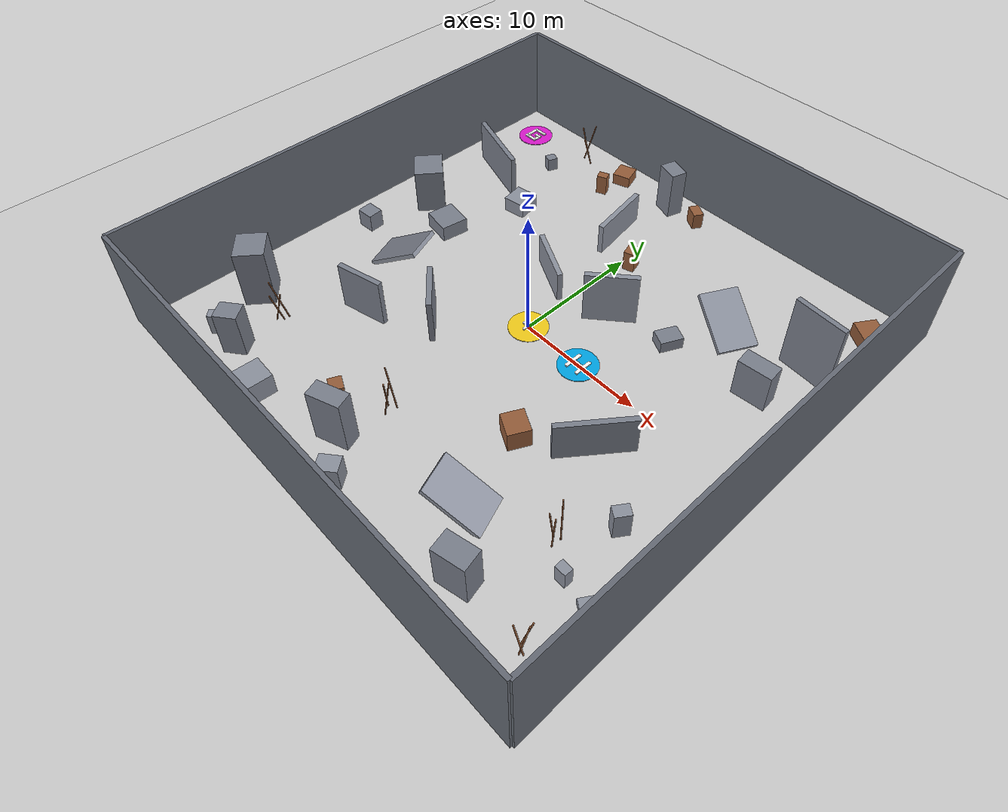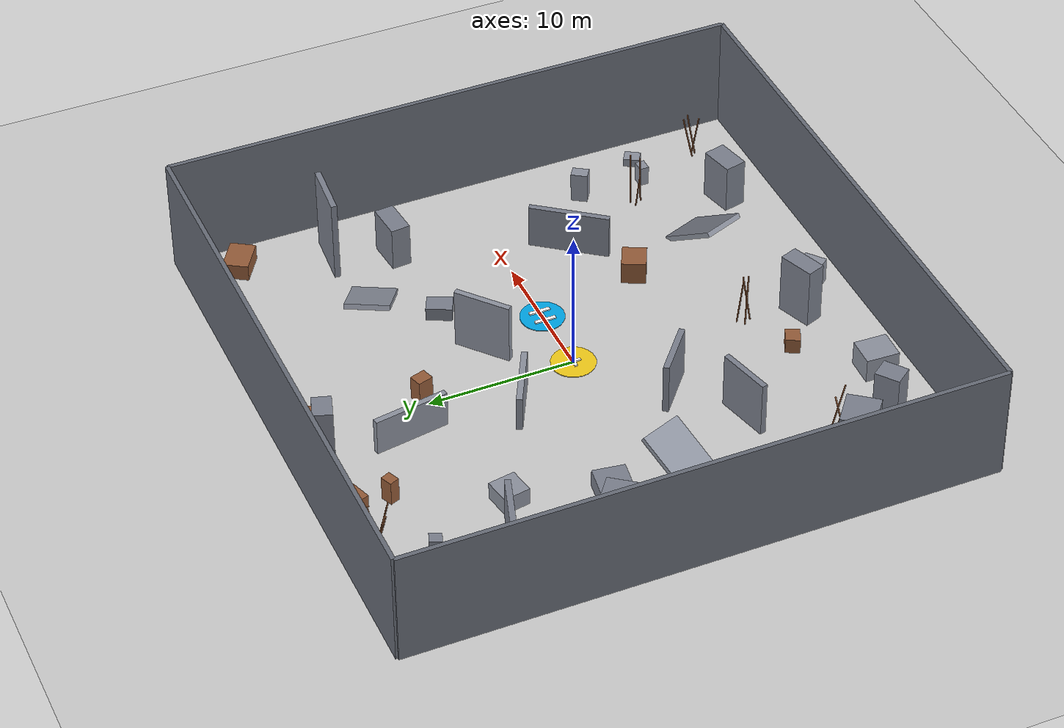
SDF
<?xml version="1.0" ?>
<sdf version="1.6">
  <world name="rubble_course">
    <include><uri>model://sun</uri></include>
    <include><uri>model://ground_plane</uri></include>

    <scene>
      <ambient>0.42 0.40 0.38 1</ambient>
      <background>0.62 0.58 0.52 1</background>
      <shadows>1</shadows>
    </scene>

    <!-- Outer walls -->
    <model name="perim_s">
      <static>true</static>
      <pose>0.000 -20.000 4.000 0.0000 0.0000 0.0000</pose>
      <link name="body">
        <collision name="c"><geometry><box><size>40.000 0.300 8.000</size></box></geometry></collision>
        <visual name="v"><geometry><box><size>40.000 0.300 8.000</size></box></geometry>
          <material><ambient>0.30 0.32 0.36 1</ambient><diffuse>0.40 0.42 0.46 1</diffuse></material>
        </visual>
      </link>
    </model>
    <model name="perim_n">
      <static>true</static>
      <pose>0.000 20.000 4.000 0.0000 0.0000 0.0000</pose>
      <link name="body">
        <collision name="c"><geometry><box><size>40.000 0.300 8.000</size></box></geometry></collision>
        <visual name="v"><geometry><box><size>40.000 0.300 8.000</size></box></geometry>
          <material><ambient>0.30 0.32 0.36 1</ambient><diffuse>0.40 0.42 0.46 1</diffuse></material>
        </visual>
      </link>
    </model>
    <model name="perim_w">
      <static>true</static>
      <pose>-20.000 0.000 4.000 0.0000 0.0000 0.0000</pose>
      <link name="body">
        <collision name="c"><geometry><box><size>0.300 40.000 8.000</size></box></geometry></collision>
        <visual name="v"><geometry><box><size>0.300 40.000 8.000</size></box></geometry>
          <material><ambient>0.30 0.32 0.36 1</ambient><diffuse>0.40 0.42 0.46 1</diffuse></material>
        </visual>
      </link>
    </model>
    <model name="perim_e">
      <static>true</static>
      <pose>20.000 0.000 4.000 0.0000 0.0000 0.0000</pose>
      <link name="body">
        <collision name="c"><geometry><box><size>0.300 40.000 8.000</size></box></geometry></collision>
        <visual name="v"><geometry><box><size>0.300 40.000 8.000</size></box></geometry>
          <material><ambient>0.30 0.32 0.36 1</ambient><diffuse>0.40 0.42 0.46 1</diffuse></material>
        </visual>
      </link>
    </model>

    <!-- Collapsed slabs (tilted) -->
    <model name="slab_0">
      <static>true</static>
      <pose>10.000 10.000 1.100 0.0000 0.4363 -0.4820</pose>
      <link name="body">
        <collision name="c"><geometry><box><size>4.500 3.000 0.350</size></box></geometry></collision>
        <visual name="v"><geometry><box><size>4.500 3.000 0.350</size></box></geometry>
          <material><ambient>0.45 0.47 0.52 1</ambient><diffuse>0.55 0.57 0.62 1</diffuse></material>
        </visual>
      </link>
    </model>
    <model name="slab_1">
      <static>true</static>
      <pose>-12.000 -2.000 1.100 0.0000 -0.5236 0.3705</pose>
      <link name="body">
        <collision name="c"><geometry><box><size>4.500 3.000 0.350</size></box></geometry></collision>
        <visual name="v"><geometry><box><size>4.500 3.000 0.350</size></box></geometry>
          <material><ambient>0.45 0.47 0.52 1</ambient><diffuse>0.55 0.57 0.62 1</diffuse></material>
        </visual>
      </link>
    </model>
    <model name="slab_2">
      <static>true</static>
      <pose>8.000 -13.000 1.100 0.0000 0.5760 0.3682</pose>
      <link name="body">
        <collision name="c"><geometry><box><size>4.500 3.000 0.350</size></box></geometry></collision>
        <visual name="v"><geometry><box><size>4.500 3.000 0.350</size></box></geometry>
          <material><ambient>0.45 0.47 0.52 1</ambient><diffuse>0.55 0.57 0.62 1</diffuse></material>
        </visual>
      </link>
    </model>

    <!-- Broken wall segments (random yaw) -->
    <model name="wall_0">
      <static>true</static>
      <pose>-2.463 12.156 1.279 0.0000 0.0000 -1.4085</pose>
      <link name="body">
        <collision name="c"><geometry><box><size>5.129 0.400 2.558</size></box></geometry></collision>
        <visual name="v"><geometry><box><size>5.129 0.400 2.558</size></box></geometry>
          <material><ambient>0.45 0.47 0.52 1</ambient><diffuse>0.55 0.57 0.62 1</diffuse></material>
        </visual>
      </link>
    </model>
    <model name="wall_1">
      <static>true</static>
      <pose>-14.942 10.588 1.775 0.0000 0.0000 -0.3075</pose>
      <link name="body">
        <collision name="c"><geometry><box><size>6.109 0.400 3.550</size></box></geometry></collision>
        <visual name="v"><geometry><box><size>6.109 0.400 3.550</size></box></geometry>
          <material><ambient>0.38 0.40 0.44 1</ambient><diffuse>0.48 0.50 0.55 1</diffuse></material>
        </visual>
      </link>
    </model>
    <model name="wall_2">
      <static>true</static>
      <pose>16.176 10.576 2.950 0.0000 0.0000 -0.0830</pose>
      <link name="body">
        <collision name="c"><geometry><box><size>3.898 0.400 5.900</size></box></geometry></collision>
        <visual name="v"><geometry><box><size>3.898 0.400 5.900</size></box></geometry>
          <material><ambient>0.38 0.40 0.44 1</ambient><diffuse>0.48 0.50 0.55 1</diffuse></material>
        </visual>
      </link>
    </model>
    <model name="wall_3">
      <static>true</static>
      <pose>3.408 4.816 2.147 0.0000 0.0000 0.6986</pose>
      <link name="body">
        <collision name="c"><geometry><box><size>3.920 0.400 4.294</size></box></geometry></collision>
        <visual name="v"><geometry><box><size>3.920 0.400 4.294</size></box></geometry>
          <material><ambient>0.45 0.47 0.52 1</ambient><diffuse>0.55 0.57 0.62 1</diffuse></material>
        </visual>
      </link>
    </model>
    <model name="wall_4">
      <static>true</static>
      <pose>-5.175 -4.640 1.810 0.0000 0.0000 2.4458</pose>
      <link name="body">
        <collision name="c"><geometry><box><size>3.916 0.400 3.621</size></box></geometry></collision>
        <visual name="v"><geometry><box><size>3.916 0.400 3.621</size></box></geometry>
          <material><ambient>0.38 0.40 0.44 1</ambient><diffuse>0.48 0.50 0.55 1</diffuse></material>
        </visual>
      </link>
    </model>
    <model name="wall_5">
      <static>true</static>
      <pose>-2.506 4.647 1.254 0.0000 0.0000 -0.4755</pose>
      <link name="body">
        <collision name="c"><geometry><box><size>4.623 0.400 2.509</size></box></geometry></collision>
        <visual name="v"><geometry><box><size>4.623 0.400 2.509</size></box></geometry>
          <material><ambient>0.45 0.47 0.52 1</ambient><diffuse>0.55 0.57 0.62 1</diffuse></material>
        </visual>
      </link>
    </model>
    <model name="wall_6">
      <static>true</static>
      <pose>10.757 -4.458 1.564 0.0000 0.0000 -2.2219</pose>
      <link name="body">
        <collision name="c"><geometry><box><size>5.500 0.400 3.128</size></box></geometry></collision>
        <visual name="v"><geometry><box><size>5.500 0.400 3.128</size></box></geometry>
          <material><ambient>0.38 0.40 0.44 1</ambient><diffuse>0.48 0.50 0.55 1</diffuse></material>
        </visual>
      </link>
    </model>
    <model name="wall_7">
      <static>true</static>
      <pose>-9.207 -7.655 1.952 0.0000 0.0000 -2.9022</pose>
      <link name="body">
        <collision name="c"><geometry><box><size>3.713 0.400 3.903</size></box></geometry></collision>
        <visual name="v"><geometry><box><size>3.713 0.400 3.903</size></box></geometry>
          <material><ambient>0.38 0.40 0.44 1</ambient><diffuse>0.48 0.50 0.55 1</diffuse></material>
        </visual>
      </link>
    </model>

    <!-- Tall debris blocks (block 4m flight altitude) -->
    <model name="tall_0">
      <static>true</static>
      <pose>-1.416 -15.531 2.153 0.0000 0.0000 -1.2166</pose>
      <link name="body">
        <collision name="c"><geometry><box><size>1.264 2.490 4.307</size></box></geometry></collision>
        <visual name="v"><geometry><box><size>1.264 2.490 4.307</size></box></geometry>
          <material><ambient>0.38 0.40 0.44 1</ambient><diffuse>0.48 0.50 0.55 1</diffuse></material>
        </visual>
      </link>
    </model>
    <model name="tall_1">
      <static>true</static>
      <pose>-1.818 17.694 2.028 0.0000 0.0000 2.8372</pose>
      <link name="body">
        <collision name="c"><geometry><box><size>1.746 1.286 4.056</size></box></geometry></collision>
        <visual name="v"><geometry><box><size>1.746 1.286 4.056</size></box></geometry>
          <material><ambient>0.38 0.40 0.44 1</ambient><diffuse>0.48 0.50 0.55 1</diffuse></material>
        </visual>
      </link>
    </model>
    <model name="tall_2">
      <static>true</static>
      <pose>-12.659 -16.106 1.808 0.0000 0.0000 0.6486</pose>
      <link name="body">
        <collision name="c"><geometry><box><size>1.716 1.419 3.616</size></box></geometry></collision>
        <visual name="v"><geometry><box><size>1.716 1.419 3.616</size></box></geometry>
          <material><ambient>0.38 0.40 0.44 1</ambient><diffuse>0.48 0.50 0.55 1</diffuse></material>
        </visual>
      </link>
    </model>
    <model name="tall_3">
      <static>true</static>
      <pose>-16.230 -12.001 2.402 0.0000 0.0000 2.4789</pose>
      <link name="body">
        <collision name="c"><geometry><box><size>2.442 2.236 4.805</size></box></geometry></collision>
        <visual name="v"><geometry><box><size>2.442 2.236 4.805</size></box></geometry>
          <material><ambient>0.38 0.40 0.44 1</ambient><diffuse>0.48 0.50 0.55 1</diffuse></material>
        </visual>
      </link>
    </model>
    <model name="tall_4">
      <static>true</static>
      <pose>14.845 6.537 1.570 0.0000 0.0000 -1.4824</pose>
      <link name="body">
        <collision name="c"><geometry><box><size>1.326 2.505 3.141</size></box></geometry></collision>
        <visual name="v"><geometry><box><size>1.326 2.505 3.141</size></box></geometry>
          <material><ambient>0.38 0.40 0.44 1</ambient><diffuse>0.48 0.50 0.55 1</diffuse></material>
        </visual>
      </link>
    </model>
    <model name="tall_5">
      <static>true</static>
      <pose>11.575 -16.310 1.739 0.0000 0.0000 1.7982</pose>
      <link name="body">
        <collision name="c"><geometry><box><size>1.533 2.359 3.477</size></box></geometry></collision>
        <visual name="v"><geometry><box><size>1.533 2.359 3.477</size></box></geometry>
          <material><ambient>0.38 0.40 0.44 1</ambient><diffuse>0.48 0.50 0.55 1</diffuse></material>
        </visual>
      </link>
    </model>
    <model name="tall_6">
      <static>true</static>
      <pose>-16.130 4.080 1.871 0.0000 0.0000 -0.6500</pose>
      <link name="body">
        <collision name="c"><geometry><box><size>2.520 2.264 3.741</size></box></geometry></collision>
        <visual name="v"><geometry><box><size>2.520 2.264 3.741</size></box></geometry>
          <material><ambient>0.38 0.40 0.44 1</ambient><diffuse>0.48 0.50 0.55 1</diffuse></material>
        </visual>
      </link>
    </model>

    <!-- Low rubble piles (below flight altitude, ground texture) -->
    <model name="low_0">
      <static>true</static>
      <pose>15.542 -11.987 0.695 0.0000 0.0000 3.1393</pose>
      <link name="body">
        <collision name="c"><geometry><box><size>0.825 0.645 1.391</size></box></geometry></collision>
        <visual name="v"><geometry><box><size>0.825 0.645 1.391</size></box></geometry>
          <material><ambient>0.45 0.47 0.52 1</ambient><diffuse>0.55 0.57 0.62 1</diffuse></material>
        </visual>
      </link>
    </model>
    <model name="low_1">
      <static>true</static>
      <pose>-6.895 17.861 0.478 0.0000 0.0000 -1.2508</pose>
      <link name="body">
        <collision name="c"><geometry><box><size>1.554 1.454 0.955</size></box></geometry></collision>
        <visual name="v"><geometry><box><size>1.554 1.454 0.955</size></box></geometry>
          <material><ambient>0.45 0.28 0.18 1</ambient><diffuse>0.58 0.36 0.22 1</diffuse></material>
        </visual>
      </link>
    </model>
    <model name="low_2">
      <static>true</static>
      <pose>17.719 16.343 0.569 0.0000 0.0000 -0.5706</pose>
      <link name="body">
        <collision name="c"><geometry><box><size>2.324 1.736 1.137</size></box></geometry></collision>
        <visual name="v"><geometry><box><size>2.324 1.736 1.137</size></box></geometry>
          <material><ambient>0.45 0.28 0.18 1</ambient><diffuse>0.58 0.36 0.22 1</diffuse></material>
        </visual>
      </link>
    </model>
    <model name="low_3">
      <static>true</static>
      <pose>-12.417 2.815 0.644 0.0000 0.0000 -0.1501</pose>
      <link name="body">
        <collision name="c"><geometry><box><size>2.333 2.169 1.287</size></box></geometry></collision>
        <visual name="v"><geometry><box><size>2.333 2.169 1.287</size></box></geometry>
          <material><ambient>0.38 0.40 0.44 1</ambient><diffuse>0.48 0.50 0.55 1</diffuse></material>
        </visual>
      </link>
    </model>
    <model name="low_4">
      <static>true</static>
      <pose>-10.285 8.832 0.614 0.0000 0.0000 1.7398</pose>
      <link name="body">
        <collision name="c"><geometry><box><size>1.838 1.816 1.228</size></box></geometry></collision>
        <visual name="v"><geometry><box><size>1.838 1.816 1.228</size></box></geometry>
          <material><ambient>0.45 0.47 0.52 1</ambient><diffuse>0.55 0.57 0.62 1</diffuse></material>
        </visual>
      </link>
    </model>
    <model name="low_5">
      <static>true</static>
      <pose>6.521 -7.266 0.803 0.0000 0.0000 2.6757</pose>
      <link name="body">
        <collision name="c"><geometry><box><size>1.791 1.647 1.606</size></box></geometry></collision>
        <visual name="v"><geometry><box><size>1.791 1.647 1.606</size></box></geometry>
          <material><ambient>0.45 0.28 0.18 1</ambient><diffuse>0.58 0.36 0.22 1</diffuse></material>
        </visual>
      </link>
    </model>
    <model name="low_6">
      <static>true</static>
      <pose>1.093 -17.655 0.896 0.0000 0.0000 0.6794</pose>
      <link name="body">
        <collision name="c"><geometry><box><size>1.519 1.218 1.792</size></box></geometry></collision>
        <visual name="v"><geometry><box><size>1.519 1.218 1.792</size></box></geometry>
          <material><ambient>0.45 0.47 0.52 1</ambient><diffuse>0.55 0.57 0.62 1</diffuse></material>
        </visual>
      </link>
    </model>
    <model name="low_7">
      <static>true</static>
      <pose>0.886 17.732 0.684 0.0000 0.0000 2.6023</pose>
      <link name="body">
        <collision name="c"><geometry><box><size>1.177 0.828 1.367</size></box></geometry></collision>
        <visual name="v"><geometry><box><size>1.177 0.828 1.367</size></box></geometry>
          <material><ambient>0.45 0.28 0.18 1</ambient><diffuse>0.58 0.36 0.22 1</diffuse></material>
        </visual>
      </link>
    </model>
    <model name="low_8">
      <static>true</static>
      <pose>7.950 6.019 0.469 0.0000 0.0000 -2.0205</pose>
      <link name="body">
        <collision name="c"><geometry><box><size>1.745 1.292 0.937</size></box></geometry></collision>
        <visual name="v"><geometry><box><size>1.745 1.292 0.937</size></box></geometry>
          <material><ambient>0.38 0.40 0.44 1</ambient><diffuse>0.48 0.50 0.55 1</diffuse></material>
        </visual>
      </link>
    </model>
    <model name="low_9">
      <static>true</static>
      <pose>-17.062 -1.370 0.741 0.0000 0.0000 0.0833</pose>
      <link name="body">
        <collision name="c"><geometry><box><size>1.370 1.194 1.483</size></box></geometry></collision>
        <visual name="v"><geometry><box><size>1.370 1.194 1.483</size></box></geometry>
          <material><ambient>0.38 0.40 0.44 1</ambient><diffuse>0.48 0.50 0.55 1</diffuse></material>
        </visual>
      </link>
    </model>
    <model name="low_10">
      <static>true</static>
      <pose>-4.336 -13.515 0.528 0.0000 0.0000 2.7123</pose>
      <link name="body">
        <collision name="c"><geometry><box><size>1.129 0.987 1.057</size></box></geometry></collision>
        <visual name="v"><geometry><box><size>1.129 0.987 1.057</size></box></geometry>
          <material><ambient>0.45 0.28 0.18 1</ambient><diffuse>0.58 0.36 0.22 1</diffuse></material>
        </visual>
      </link>
    </model>
    <model name="low_11">
      <static>true</static>
      <pose>-7.195 15.411 0.856 0.0000 0.0000 0.4033</pose>
      <link name="body">
        <collision name="c"><geometry><box><size>0.842 0.688 1.712</size></box></geometry></collision>
        <visual name="v"><geometry><box><size>0.842 0.688 1.712</size></box></geometry>
          <material><ambient>0.45 0.28 0.18 1</ambient><diffuse>0.58 0.36 0.22 1</diffuse></material>
        </visual>
      </link>
    </model>
    <model name="low_12">
      <static>true</static>
      <pose>15.605 -7.394 1.078 0.0000 0.0000 0.9806</pose>
      <link name="body">
        <collision name="c"><geometry><box><size>1.126 0.818 2.156</size></box></geometry></collision>
        <visual name="v"><geometry><box><size>1.126 0.818 2.156</size></box></geometry>
          <material><ambient>0.45 0.47 0.52 1</ambient><diffuse>0.55 0.57 0.62 1</diffuse></material>
        </visual>
      </link>
    </model>
    <model name="low_13">
      <static>true</static>
      <pose>17.699 -12.240 0.297 0.0000 0.0000 1.0018</pose>
      <link name="body">
        <collision name="c"><geometry><box><size>1.096 0.911 0.594</size></box></geometry></collision>
        <visual name="v"><geometry><box><size>1.096 0.911 0.594</size></box></geometry>
          <material><ambient>0.45 0.47 0.52 1</ambient><diffuse>0.55 0.57 0.62 1</diffuse></material>
        </visual>
      </link>
    </model>
    <model name="low_14">
      <static>true</static>
      <pose>0.755 10.147 0.850 0.0000 0.0000 -1.2727</pose>
      <link name="body">
        <collision name="c"><geometry><box><size>1.079 0.893 1.700</size></box></geometry></collision>
        <visual name="v"><geometry><box><size>1.079 0.893 1.700</size></box></geometry>
          <material><ambient>0.45 0.28 0.18 1</ambient><diffuse>0.58 0.36 0.22 1</diffuse></material>
        </visual>
      </link>
    </model>
    <model name="low_15">
      <static>true</static>
      <pose>-14.959 -16.307 0.890 0.0000 0.0000 0.7826</pose>
      <link name="body">
        <collision name="c"><geometry><box><size>0.991 0.738 1.779</size></box></geometry></collision>
        <visual name="v"><geometry><box><size>0.991 0.738 1.779</size></box></geometry>
          <material><ambient>0.45 0.47 0.52 1</ambient><diffuse>0.55 0.57 0.62 1</diffuse></material>
        </visual>
      </link>
    </model>
    <model name="low_16">
      <static>true</static>
      <pose>-8.322 -17.449 0.850 0.0000 0.0000 -1.6097</pose>
      <link name="body">
        <collision name="c"><geometry><box><size>2.273 2.022 1.701</size></box></geometry></collision>
        <visual name="v"><geometry><box><size>2.273 2.022 1.701</size></box></geometry>
          <material><ambient>0.45 0.47 0.52 1</ambient><diffuse>0.55 0.57 0.62 1</diffuse></material>
        </visual>
      </link>
    </model>
    <model name="low_17">
      <static>true</static>
      <pose>-12.563 14.604 0.558 0.0000 0.0000 -1.9296</pose>
      <link name="body">
        <collision name="c"><geometry><box><size>0.831 0.769 1.116</size></box></geometry></collision>
        <visual name="v"><geometry><box><size>0.831 0.769 1.116</size></box></geometry>
          <material><ambient>0.38 0.40 0.44 1</ambient><diffuse>0.48 0.50 0.55 1</diffuse></material>
        </visual>
      </link>
    </model>

    <!-- Rebar clusters (thin rods, slightly tilted) -->
    <model name="rebar_0_0">
      <static>true</static>
      <pose>-12.746 -12.685 1.394 0.2233 -0.0331 0.0000</pose>
      <link name="body">
        <collision name="c"><geometry><cylinder><radius>0.050</radius><length>2.788</length></cylinder></geometry></collision>
        <visual name="v"><geometry><cylinder><radius>0.050</radius><length>2.788</length></cylinder></geometry>
          <material><ambient>0.45 0.28 0.18 1</ambient><diffuse>0.58 0.36 0.22 1</diffuse></material>
        </visual>
      </link>
    </model>
    <model name="rebar_0_1">
      <static>true</static>
      <pose>-12.763 -12.534 1.355 -0.1690 0.2198 0.0000</pose>
      <link name="body">
        <collision name="c"><geometry><cylinder><radius>0.050</radius><length>2.709</length></cylinder></geometry></collision>
        <visual name="v"><geometry><cylinder><radius>0.050</radius><length>2.709</length></cylinder></geometry>
          <material><ambient>0.45 0.28 0.18 1</ambient><diffuse>0.58 0.36 0.22 1</diffuse></material>
        </visual>
      </link>
    </model>
    <model name="rebar_0_2">
      <static>true</static>
      <pose>-12.775 -12.348 1.930 0.2012 -0.0488 0.0000</pose>
      <link name="body">
        <collision name="c"><geometry><cylinder><radius>0.050</radius><length>3.859</length></cylinder></geometry></collision>
        <visual name="v"><geometry><cylinder><radius>0.050</radius><length>3.859</length></cylinder></geometry>
          <material><ambient>0.45 0.28 0.18 1</ambient><diffuse>0.58 0.36 0.22 1</diffuse></material>
        </visual>
      </link>
    </model>
    <model name="rebar_1_0">
      <static>true</static>
      <pose>16.921 -16.115 1.482 -0.1512 0.1995 0.0000</pose>
      <link name="body">
        <collision name="c"><geometry><cylinder><radius>0.050</radius><length>2.964</length></cylinder></geometry></collision>
        <visual name="v"><geometry><cylinder><radius>0.050</radius><length>2.964</length></cylinder></geometry>
          <material><ambient>0.45 0.28 0.18 1</ambient><diffuse>0.58 0.36 0.22 1</diffuse></material>
        </visual>
      </link>
    </model>
    <model name="rebar_1_1">
      <static>true</static>
      <pose>17.112 -16.450 1.590 -0.1437 0.1242 0.0000</pose>
      <link name="body">
        <collision name="c"><geometry><cylinder><radius>0.050</radius><length>3.180</length></cylinder></geometry></collision>
        <visual name="v"><geometry><cylinder><radius>0.050</radius><length>3.180</length></cylinder></geometry>
          <material><ambient>0.45 0.28 0.18 1</ambient><diffuse>0.58 0.36 0.22 1</diffuse></material>
        </visual>
      </link>
    </model>
    <model name="rebar_1_2">
      <static>true</static>
      <pose>16.887 -16.668 1.584 0.0793 -0.1509 0.0000</pose>
      <link name="body">
        <collision name="c"><geometry><cylinder><radius>0.050</radius><length>3.169</length></cylinder></geometry></collision>
        <visual name="v"><geometry><cylinder><radius>0.050</radius><length>3.169</length></cylinder></geometry>
          <material><ambient>0.45 0.28 0.18 1</ambient><diffuse>0.58 0.36 0.22 1</diffuse></material>
        </visual>
      </link>
    </model>
    <model name="rebar_2_0">
      <static>true</static>
      <pose>13.165 -10.609 1.282 0.0905 -0.0522 0.0000</pose>
      <link name="body">
        <collision name="c"><geometry><cylinder><radius>0.050</radius><length>2.563</length></cylinder></geometry></collision>
        <visual name="v"><geometry><cylinder><radius>0.050</radius><length>2.563</length></cylinder></geometry>
          <material><ambient>0.45 0.28 0.18 1</ambient><diffuse>0.58 0.36 0.22 1</diffuse></material>
        </visual>
      </link>
    </model>
    <model name="rebar_2_1">
      <static>true</static>
      <pose>13.653 -10.268 2.029 -0.0228 -0.0038 0.0000</pose>
      <link name="body">
        <collision name="c"><geometry><cylinder><radius>0.050</radius><length>4.057</length></cylinder></geometry></collision>
        <visual name="v"><geometry><cylinder><radius>0.050</radius><length>4.057</length></cylinder></geometry>
          <material><ambient>0.45 0.28 0.18 1</ambient><diffuse>0.58 0.36 0.22 1</diffuse></material>
        </visual>
      </link>
    </model>
    <model name="rebar_2_2">
      <static>true</static>
      <pose>13.777 -11.052 1.666 0.0170 0.0926 0.0000</pose>
      <link name="body">
        <collision name="c"><geometry><cylinder><radius>0.050</radius><length>3.332</length></cylinder></geometry></collision>
        <visual name="v"><geometry><cylinder><radius>0.050</radius><length>3.332</length></cylinder></geometry>
          <material><ambient>0.45 0.28 0.18 1</ambient><diffuse>0.58 0.36 0.22 1</diffuse></material>
        </visual>
      </link>
    </model>
    <model name="rebar_3_0">
      <static>true</static>
      <pose>-0.862 -11.420 1.865 0.0294 -0.1449 0.0000</pose>
      <link name="body">
        <collision name="c"><geometry><cylinder><radius>0.050</radius><length>3.730</length></cylinder></geometry></collision>
        <visual name="v"><geometry><cylinder><radius>0.050</radius><length>3.730</length></cylinder></geometry>
          <material><ambient>0.45 0.28 0.18 1</ambient><diffuse>0.58 0.36 0.22 1</diffuse></material>
        </visual>
      </link>
    </model>
    <model name="rebar_3_1">
      <static>true</static>
      <pose>-0.475 -12.080 1.658 -0.1090 0.1474 0.0000</pose>
      <link name="body">
        <collision name="c"><geometry><cylinder><radius>0.050</radius><length>3.316</length></cylinder></geometry></collision>
        <visual name="v"><geometry><cylinder><radius>0.050</radius><length>3.316</length></cylinder></geometry>
          <material><ambient>0.45 0.28 0.18 1</ambient><diffuse>0.58 0.36 0.22 1</diffuse></material>
        </visual>
      </link>
    </model>
    <model name="rebar_3_2">
      <static>true</static>
      <pose>-0.741 -11.966 1.697 0.1584 0.2312 0.0000</pose>
      <link name="body">
        <collision name="c"><geometry><cylinder><radius>0.050</radius><length>3.394</length></cylinder></geometry></collision>
        <visual name="v"><geometry><cylinder><radius>0.050</radius><length>3.394</length></cylinder></geometry>
          <material><ambient>0.45 0.28 0.18 1</ambient><diffuse>0.58 0.36 0.22 1</diffuse></material>
        </visual>
      </link>
    </model>
    <model name="rebar_4_0">
      <static>true</static>
      <pose>-10.795 17.328 1.252 0.1371 -0.2128 0.0000</pose>
      <link name="body">
        <collision name="c"><geometry><cylinder><radius>0.050</radius><length>2.503</length></cylinder></geometry></collision>
        <visual name="v"><geometry><cylinder><radius>0.050</radius><length>2.503</length></cylinder></geometry>
          <material><ambient>0.45 0.28 0.18 1</ambient><diffuse>0.58 0.36 0.22 1</diffuse></material>
        </visual>
      </link>
    </model>
    <model name="rebar_4_1">
      <static>true</static>
      <pose>-11.125 17.958 1.756 -0.1505 0.2027 0.0000</pose>
      <link name="body">
        <collision name="c"><geometry><cylinder><radius>0.050</radius><length>3.512</length></cylinder></geometry></collision>
        <visual name="v"><geometry><cylinder><radius>0.050</radius><length>3.512</length></cylinder></geometry>
          <material><ambient>0.45 0.28 0.18 1</ambient><diffuse>0.58 0.36 0.22 1</diffuse></material>
        </visual>
      </link>
    </model>
    <model name="rebar_4_2">
      <static>true</static>
      <pose>-11.131 17.466 1.872 0.2439 -0.0240 0.0000</pose>
      <link name="body">
        <collision name="c"><geometry><cylinder><radius>0.050</radius><length>3.744</length></cylinder></geometry></collision>
        <visual name="v"><geometry><cylinder><radius>0.050</radius><length>3.744</length></cylinder></geometry>
          <material><ambient>0.45 0.28 0.18 1</ambient><diffuse>0.58 0.36 0.22 1</diffuse></material>
        </visual>
      </link>
    </model>

    <!-- SPAWN: (0.0,0.0) / HOME: (5.0,0.0) / GOAL: (-17.0,17.0) -->
    <model name="spawn_marker">
      <static>true</static>
      <pose>0.00 0.00 0 0 0 0</pose>
      <link name="link">
        <visual name="disc">
          <pose>0 0 0.025 0 0 0</pose>
          <geometry><cylinder><radius>1.5</radius><length>0.05</length></cylinder></geometry>
          <material>
            <ambient>0.95 0.8 0.1 1</ambient><diffuse>0.95 0.8 0.1 1</diffuse>
            <specular>0.1 0.1 0.1 1</specular><emissive>0.95 0.8 0.1 1</emissive>
          </material>
        </visual>
        <visual name="plus_h">
          <pose>0 0 0.1 0 0 0</pose>
          <geometry><box><size>1.0 0.2 0.1</size></box></geometry>
          <material><ambient>1 1 1 1</ambient><diffuse>1 1 1 1</diffuse><emissive>0.4 0.4 0.4 1</emissive></material>
        </visual>
        <visual name="plus_v">
          <pose>0 0 0.1 0 0 0</pose>
          <geometry><box><size>0.2 1.0 0.1</size></box></geometry>
          <material><ambient>1 1 1 1</ambient><diffuse>1 1 1 1</diffuse><emissive>0.4 0.4 0.4 1</emissive></material>
        </visual>
      </link>
    </model>
    <model name="home_marker">
      <static>true</static>
      <pose>5.00 0.00 0 0 0 0</pose>
      <link name="link">
        <visual name="disc">
          <pose>0 0 0.025 0 0 0</pose>
          <geometry><cylinder><radius>1.5</radius><length>0.05</length></cylinder></geometry>
          <material>
            <ambient>0.0 0.65 0.9 1</ambient><diffuse>0.0 0.65 0.9 1</diffuse>
            <specular>0.1 0.1 0.1 1</specular><emissive>0.0 0.65 0.9 1</emissive>
          </material>
        </visual>
        <visual name="h_left">
          <pose>-0.475 0 0.1 0 0 0</pose>
          <geometry><box><size>0.25 1.45 0.1</size></box></geometry>
          <material><ambient>1 1 1 1</ambient><diffuse>1 1 1 1</diffuse><emissive>0.4 0.4 0.4 1</emissive></material>
        </visual>
        <visual name="h_right">
          <pose>0.475 0 0.1 0 0 0</pose>
          <geometry><box><size>0.25 1.45 0.1</size></box></geometry>
          <material><ambient>1 1 1 1</ambient><diffuse>1 1 1 1</diffuse><emissive>0.4 0.4 0.4 1</emissive></material>
        </visual>
        <visual name="h_mid">
          <pose>0 0 0.1 0 0 0</pose>
          <geometry><box><size>0.7 0.25 0.1</size></box></geometry>
          <material><ambient>1 1 1 1</ambient><diffuse>1 1 1 1</diffuse><emissive>0.4 0.4 0.4 1</emissive></material>
        </visual>
      </link>
    </model>
    <model name="goal_marker">
      <static>true</static>
      <pose>-17.00 17.00 0 0 0 0</pose>
      <link name="link">
        <visual name="disc">
          <pose>0 0 0.025 0 0 0</pose>
          <geometry><cylinder><radius>1.5</radius><length>0.05</length></cylinder></geometry>
          <material>
            <ambient>0.85 0.1 0.8 1</ambient><diffuse>0.85 0.1 0.8 1</diffuse>
            <specular>0.1 0.1 0.1 1</specular><emissive>0.85 0.1 0.8 1</emissive>
          </material>
        </visual>
        <visual name="g_top">
          <pose>0 0.6 0.1 0 0 0</pose>
          <geometry><box><size>1.2 0.25 0.1</size></box></geometry>
          <material><ambient>1 1 1 1</ambient><diffuse>1 1 1 1</diffuse><emissive>0.4 0.4 0.4 1</emissive></material>
        </visual>
        <visual name="g_left">
          <pose>-0.475 0 0.1 0 0 0</pose>
          <geometry><box><size>0.25 1.45 0.1</size></box></geometry>
          <material><ambient>1 1 1 1</ambient><diffuse>1 1 1 1</diffuse><emissive>0.4 0.4 0.4 1</emissive></material>
        </visual>
        <visual name="g_bottom">
          <pose>0 -0.6 0.1 0 0 0</pose>
          <geometry><box><size>1.2 0.25 0.1</size></box></geometry>
          <material><ambient>1 1 1 1</ambient><diffuse>1 1 1 1</diffuse><emissive>0.4 0.4 0.4 1</emissive></material>
        </visual>
        <visual name="g_right_lower">
          <pose>0.475 -0.3 0.1 0 0 0</pose>
          <geometry><box><size>0.25 0.6 0.1</size></box></geometry>
          <material><ambient>1 1 1 1</ambient><diffuse>1 1 1 1</diffuse><emissive>0.4 0.4 0.4 1</emissive></material>
        </visual>
        <visual name="g_mid_stub">
          <pose>0.3 0 0.1 0 0 0</pose>
          <geometry><box><size>0.6 0.25 0.1</size></box></geometry>
          <material><ambient>1 1 1 1</ambient><diffuse>1 1 1 1</diffuse><emissive>0.4 0.4 0.4 1</emissive></material>
        </visual>
      </link>
    </model>

  </world>
</sdf>
